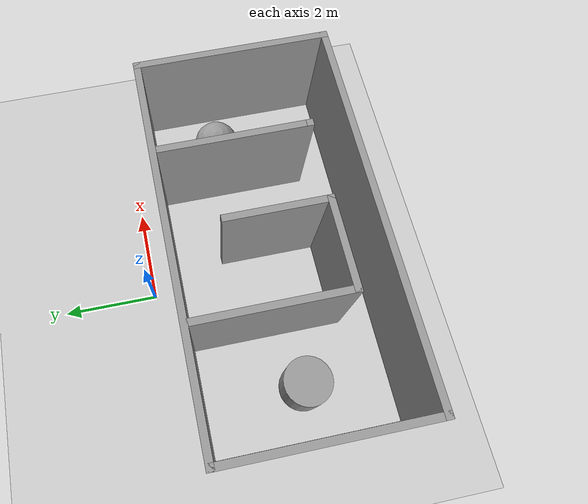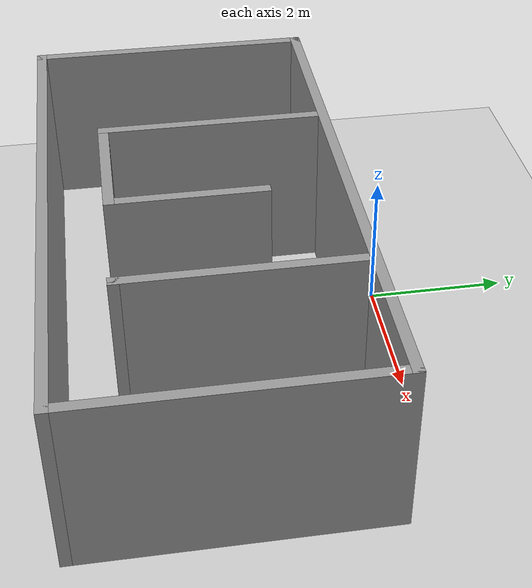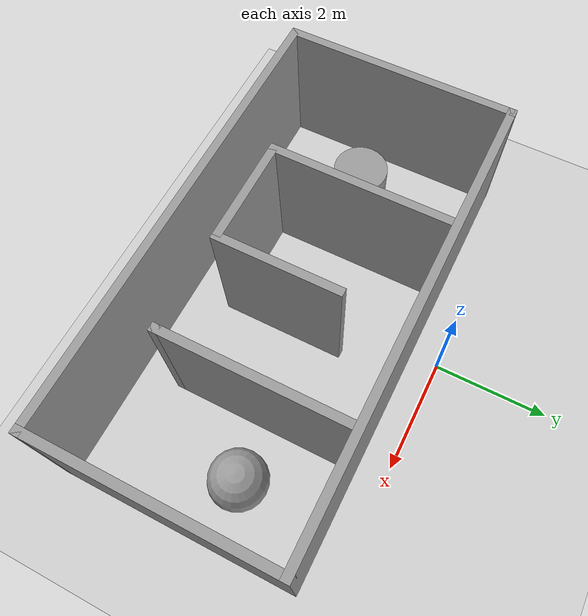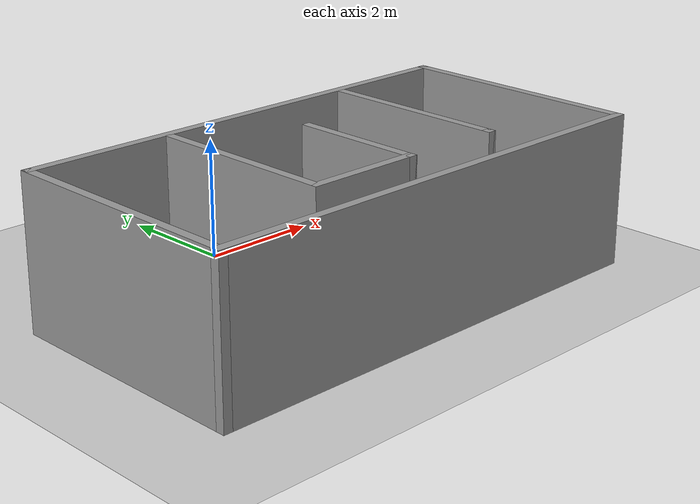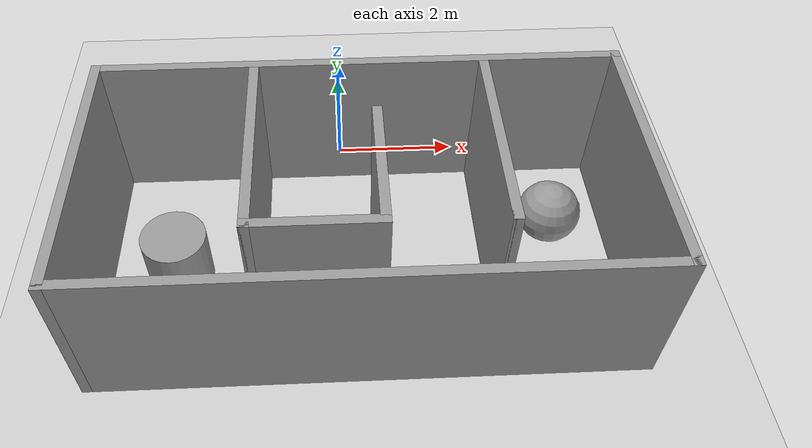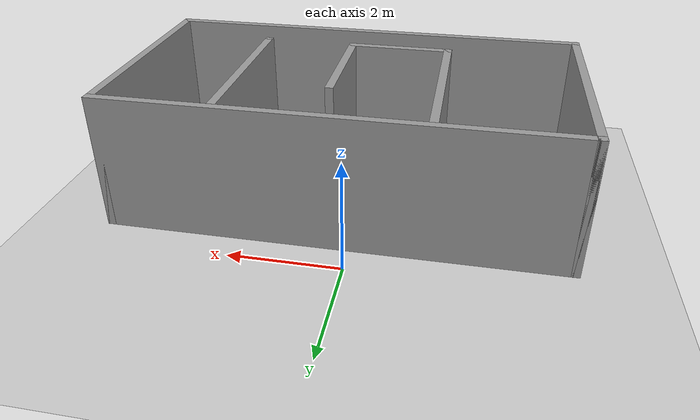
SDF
<sdf version="1.7">
 <world name="default">
  <light name="sun" type="directional">
   <pose>0 0 10 0 -0 0</pose>
   <diffuse>0.8 0.8 0.8 1</diffuse>
   <specular>0.2 0.2 0.2 1</specular>
   <attenuation>
    <range>1000</range>
    <constant>0.9</constant>
    <linear>0.01</linear>
    <quadratic>0.001</quadratic>
   </attenuation>
   <direction>-0.5 0.1 -0.9</direction>
   <spot><inner_angle>0</inner_angle><outer_angle>0</outer_angle><falloff>0</falloff></spot>
  </light>
  <model name="ground_plane">
   <static>1</static>
   <link name="link">
    <collision name="collision">
     <geometry><plane><normal>0 0 1</normal><size>100 100</size></plane></geometry>
     <surface>
      <contact><collide_bitmask>65535</collide_bitmask></contact>
      <friction><ode><mu>100</mu><mu2>50</mu2></ode></friction>
     </surface>
    </collision>
    <visual name="visual">
     <cast_shadows>0</cast_shadows>
     <geometry><plane><normal>0 0 1</normal><size>100 100</size></plane></geometry>
     <material>
      <script><uri>file://media/materials/scripts/gazebo.material</uri><name>Gazebo/Grey</name></script>
     </material>
    </visual>
   </link>
  </model>
  <gravity>0 0 -9.8</gravity>
  <magnetic_field>6e-06 2.3e-05 -4.2e-05</magnetic_field>
  <atmosphere type="adiabatic"/>
  <physics type="ode">
   <max_step_size>0.001</max_step_size>
   <real_time_factor>1</real_time_factor>
   <real_time_update_rate>1000</real_time_update_rate>
  </physics>
  <scene><ambient>0.4 0.4 0.4 1</ambient><background>0.7 0.7 0.7 1</background><shadows>1</shadows></scene>
  <spherical_coordinates>
   <surface_model>EARTH_WGS84</surface_model>
   <latitude_deg>0</latitude_deg>
   <longitude_deg>0</longitude_deg>
   <elevation>0</elevation>
   <heading_deg>0</heading_deg>
  </spherical_coordinates>
  <model name="maze">
   <pose>0.31 -2.3725 0 0 -0 0</pose>
   <link name="Wall_0">
    <collision name="Wall_0_Collision">
     <geometry><box><size>8.25 0.15 2.5</size></box></geometry>
     <pose>0 0 1.25 0 -0 0</pose>
    </collision>
    <visual name="Wall_0_Visual">
     <pose>0 0 1.25 0 -0 0</pose>
     <geometry><box><size>8.25 0.15 2.5</size></box></geometry>
     <material>
      <script><uri>file://media/materials/scripts/gazebo.material</uri><name>Gazebo/Grey</name></script>
      <ambient>1 1 1 1</ambient>
     </material>
     <meta><layer>0</layer></meta>
    </visual>
    <pose>-0 1.8025 0 0 -0 0</pose>
   </link>
   <link name="Wall_1">
    <collision name="Wall_1_Collision">
     <geometry><box><size>4.25 0.15 2.5</size></box></geometry>
     <pose>0 0 1.25 0 -0 0</pose>
    </collision>
    <visual name="Wall_1_Visual">
     <pose>0 0 1.25 0 -0 0</pose>
     <geometry><box><size>4.25 0.15 2.5</size></box></geometry>
     <material>
      <script><uri>file://media/materials/scripts/gazebo.material</uri><name>Gazebo/Grey</name></script>
      <ambient>1 1 1 1</ambient>
     </material>
     <meta><layer>0</layer></meta>
    </visual>
    <pose>4.05 -0.2475 0 0 -0 -1.5708</pose>
   </link>
   <link name="Wall_11">
    <collision name="Wall_11_Collision">
     <geometry><box><size>3.25 0.15 2.5</size></box></geometry>
     <pose>0 0 1.25 0 -0 0</pose>
    </collision>
    <visual name="Wall_11_Visual">
     <pose>0 0 1.25 0 -0 0</pose>
     <geometry><box><size>3.25 0.15 2.5</size></box></geometry>
     <material>
      <script><uri>file://media/materials/scripts/gazebo.material</uri><name>Gazebo/Grey</name></script>
      <ambient>1 1 1 1</ambient>
     </material>
     <meta><layer>0</layer></meta>
    </visual>
    <pose>1.96 0.1025 0 0 -0 -1.5708</pose>
   </link>
   <link name="Wall_12">
    <collision name="Wall_12_Collision">
     <geometry><box><size>0.15 0.15 2.5</size></box></geometry>
     <pose>0 0 1.25 0 -0 0</pose>
    </collision>
    <visual name="Wall_12_Visual">
     <pose>0 0 1.25 0 -0 0</pose>
     <geometry><box><size>0.15 0.15 2.5</size></box></geometry>
     <material>
      <script><uri>file://media/materials/scripts/gazebo.material</uri><name>Gazebo/Grey</name></script>
      <ambient>1 1 1 1</ambient>
     </material>
     <meta><layer>0</layer></meta>
    </visual>
    <pose>1.96 -1.4475 0 0 -0 0</pose>
   </link>
   <link name="Wall_2">
    <collision name="Wall_2_Collision">
     <geometry><box><size>8.25 0.15 2.5</size></box></geometry>
     <pose>0 0 1.25 0 -0 0</pose>
    </collision>
    <visual name="Wall_2_Visual">
     <pose>0 0 1.25 0 -0 0</pose>
     <geometry><box><size>8.25 0.15 2.5</size></box></geometry>
     <material>
      <script><uri>file://media/materials/scripts/gazebo.material</uri><name>Gazebo/Grey</name></script>
      <ambient>1 1 1 1</ambient>
     </material>
     <meta><layer>0</layer></meta>
    </visual>
    <pose>-0 -2.2975 0 0 -0 3.14159</pose>
   </link>
   <link name="Wall_3">
    <collision name="Wall_3_Collision">
     <geometry><box><size>4.25 0.15 2.5</size></box></geometry>
     <pose>0 0 1.25 0 -0 0</pose>
    </collision>
    <visual name="Wall_3_Visual">
     <pose>0 0 1.25 0 -0 0</pose>
     <geometry><box><size>4.25 0.15 2.5</size></box></geometry>
     <material>
      <script><uri>file://media/materials/scripts/gazebo.material</uri><name>Gazebo/Grey</name></script>
      <ambient>1 1 1 1</ambient>
     </material>
     <meta><layer>0</layer></meta>
    </visual>
    <pose>-4.05 -0.2475 0 0 -0 1.5708</pose>
   </link>
   <link name="Wall_4">
    <collision name="Wall_4_Collision">
     <geometry><box><size>0.15 0.15 2.5</size></box></geometry>
     <pose>0 0 1.25 0 -0 0</pose>
    </collision>
    <visual name="Wall_4_Visual">
     <pose>0 0 1.25 0 -0 0</pose>
     <geometry><box><size>0.15 0.15 2.5</size></box></geometry>
     <material>
      <script><uri>file://media/materials/scripts/gazebo.material</uri><name>Gazebo/Grey</name></script>
      <ambient>1 1 1 1</ambient>
     </material>
     <meta><layer>0</layer></meta>
    </visual>
    <pose>-4.05 1.8025 0 0 -0 0</pose>
   </link>
   <link name="Wall_5">
    <collision name="Wall_5_Collision">
     <geometry><box><size>0.15 0.15 2.5</size></box></geometry>
     <pose>0 0 1.25 0 -0 0</pose>
    </collision>
    <visual name="Wall_5_Visual">
     <pose>0 0 1.25 0 -0 0</pose>
     <geometry><box><size>0.15 0.15 2.5</size></box></geometry>
     <material>
      <script><uri>file://media/materials/scripts/gazebo.material</uri><name>Gazebo/Grey</name></script>
      <ambient>1 1 1 1</ambient>
     </material>
     <meta><layer>0</layer></meta>
    </visual>
    <pose>-4.05 1.8025 0 0 -0 0</pose>
   </link>
   <link name="Wall_7">
    <collision name="Wall_7_Collision">
     <geometry><box><size>3.25 0.15 2.5</size></box></geometry>
     <pose>0 0 1.25 0 -0 0</pose>
    </collision>
    <visual name="Wall_7_Visual">
     <pose>0 0 1.25 0 -0 0</pose>
     <geometry><box><size>3.25 0.15 2.5</size></box></geometry>
     <material>
      <script><uri>file://media/materials/scripts/gazebo.material</uri><name>Gazebo/Grey</name></script>
      <ambient>1 1 1 1</ambient>
     </material>
     <meta><layer>0</layer></meta>
    </visual>
    <pose>-1.61 0.1225 0 0 -0 -1.5708</pose>
   </link>
   <link name="Wall_8">
    <collision name="Wall_8_Collision">
     <geometry><box><size>2 0.15 2.5</size></box></geometry>
     <pose>0 0 1.25 0 -0 0</pose>
    </collision>
    <visual name="Wall_8_Visual">
     <pose>0 0 1.25 0 -0 0</pose>
     <geometry><box><size>2 0.15 2.5</size></box></geometry>
     <material>
      <script><uri>file://media/materials/scripts/gazebo.material</uri><name>Gazebo/Grey</name></script>
      <ambient>1 1 1 1</ambient>
     </material>
     <meta><layer>0</layer></meta>
    </visual>
    <pose>-0.685 -1.4275 0 0 -0 0</pose>
   </link>
   <link name="Wall_9">
    <collision name="Wall_9_Collision">
     <geometry><box><size>2.25 0.15 2.5</size></box></geometry>
     <pose>0 0 1.25 0 -0 0</pose>
    </collision>
    <visual name="Wall_9_Visual">
     <pose>0 0 1.25 0 -0 0</pose>
     <geometry><box><size>2.25 0.15 2.5</size></box></geometry>
     <material>
      <script><uri>file://media/materials/scripts/gazebo.material</uri><name>Gazebo/Grey</name></script>
      <ambient>1 1 1 1</ambient>
     </material>
     <meta><layer>0</layer></meta>
    </visual>
    <pose>0.24 -0.3775 0 0 -0 1.5708</pose>
   </link>
   <static>1</static>
  </model>
  <model name="unit_sphere">
   <pose>3.34839 -2.06783 0.5 0 -0 0</pose>
   <link name="link">
    <inertial>
     <mass>1</mass>
     <inertia><ixx>0.1</ixx><ixy>0</ixy><ixz>0</ixz><iyy>0.1</iyy><iyz>0</iyz><izz>0.1</izz></inertia>
    </inertial>
    <collision name="collision"><geometry><sphere><radius>0.5</radius></sphere></geometry></collision>
    <visual name="visual">
     <geometry><sphere><radius>0.5</radius></sphere></geometry>
     <material>
      <script><name>Gazebo/Grey</name><uri>file://media/materials/scripts/gazebo.material</uri></script>
     </material>
    </visual>
   </link>
  </model>
  <model name="unit_cylinder">
   <pose>-2.57841 -2.74323 0.5 0 -0 0</pose>
   <link name="link">
    <inertial>
     <mass>1</mass>
     <inertia><ixx>0.145833</ixx><ixy>0</ixy><ixz>0</ixz><iyy>0.145833</iyy><iyz>0</iyz><izz>0.125</izz></inertia>
    </inertial>
    <collision name="collision">
     <geometry><cylinder><radius>0.5</radius><length>1</length></cylinder></geometry>
    </collision>
    <visual name="visual">
     <geometry><cylinder><radius>0.5</radius><length>1</length></cylinder></geometry>
     <material>
      <script><name>Gazebo/Grey</name><uri>file://media/materials/scripts/gazebo.material</uri></script>
     </material>
    </visual>
   </link>
  </model>
 </world>
</sdf>
